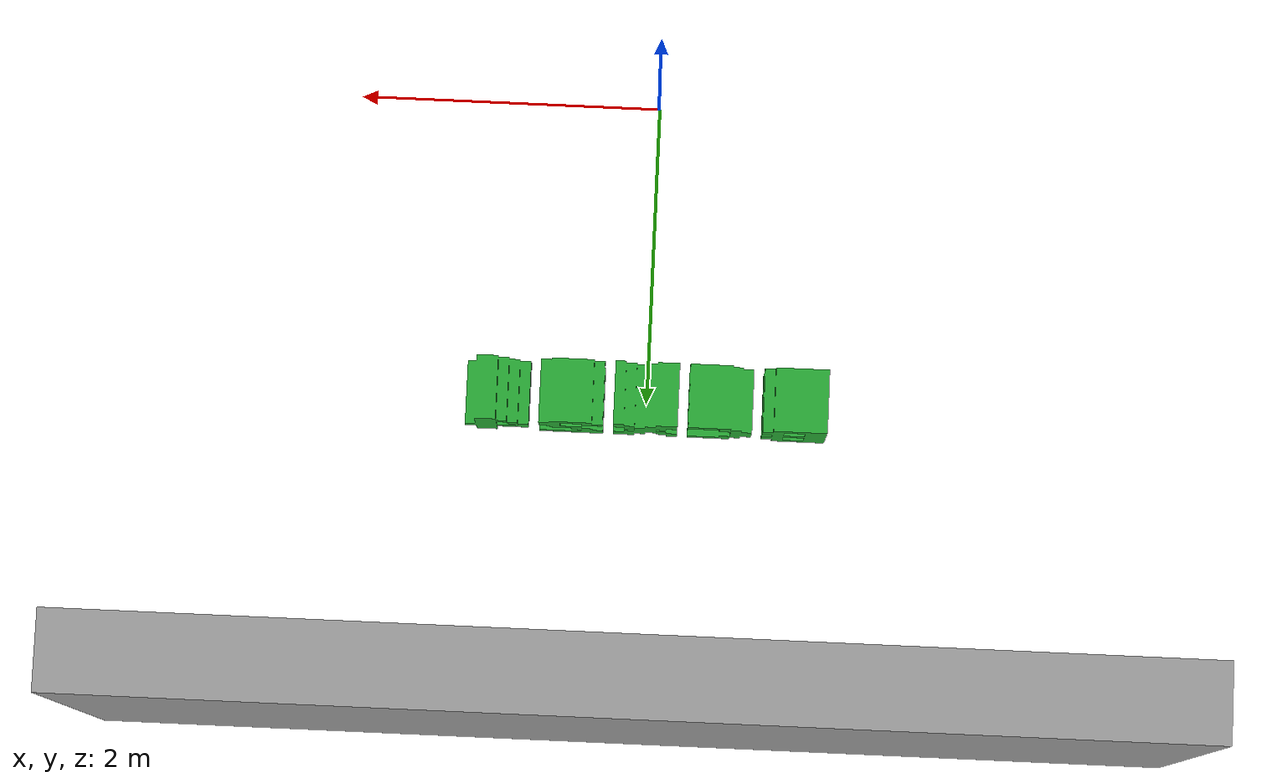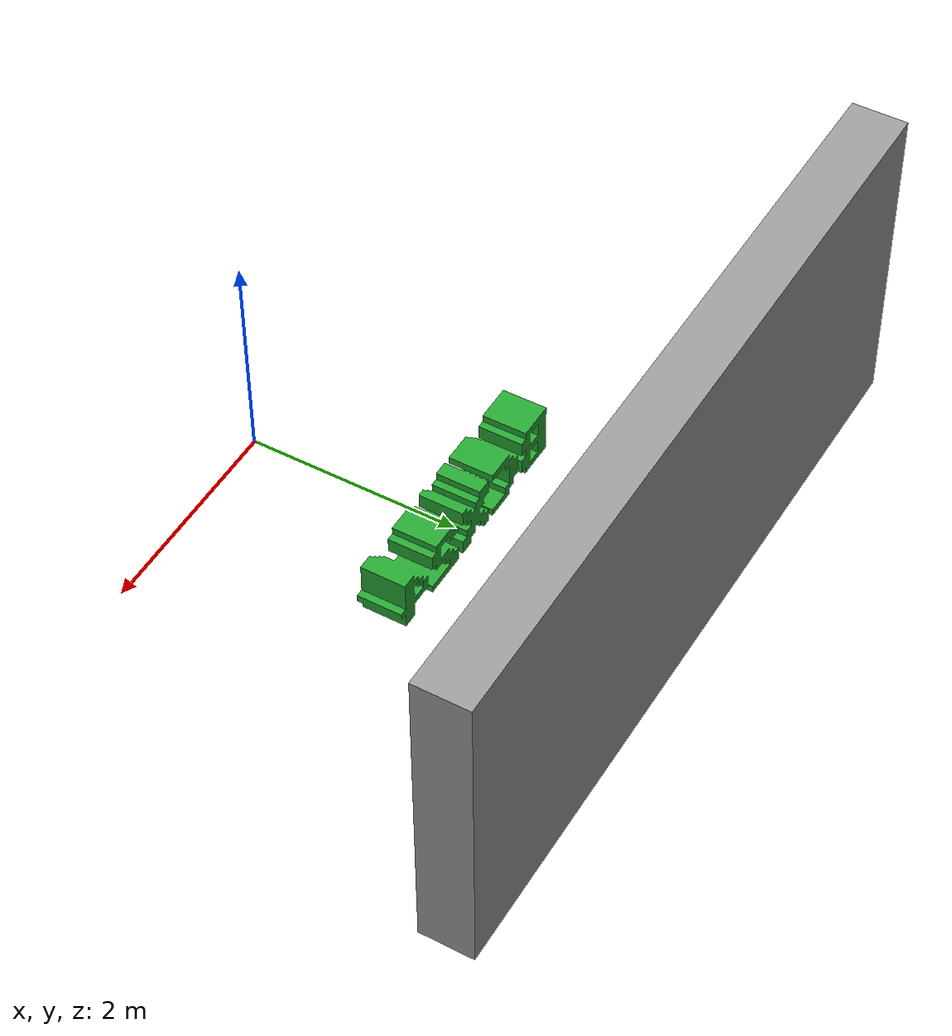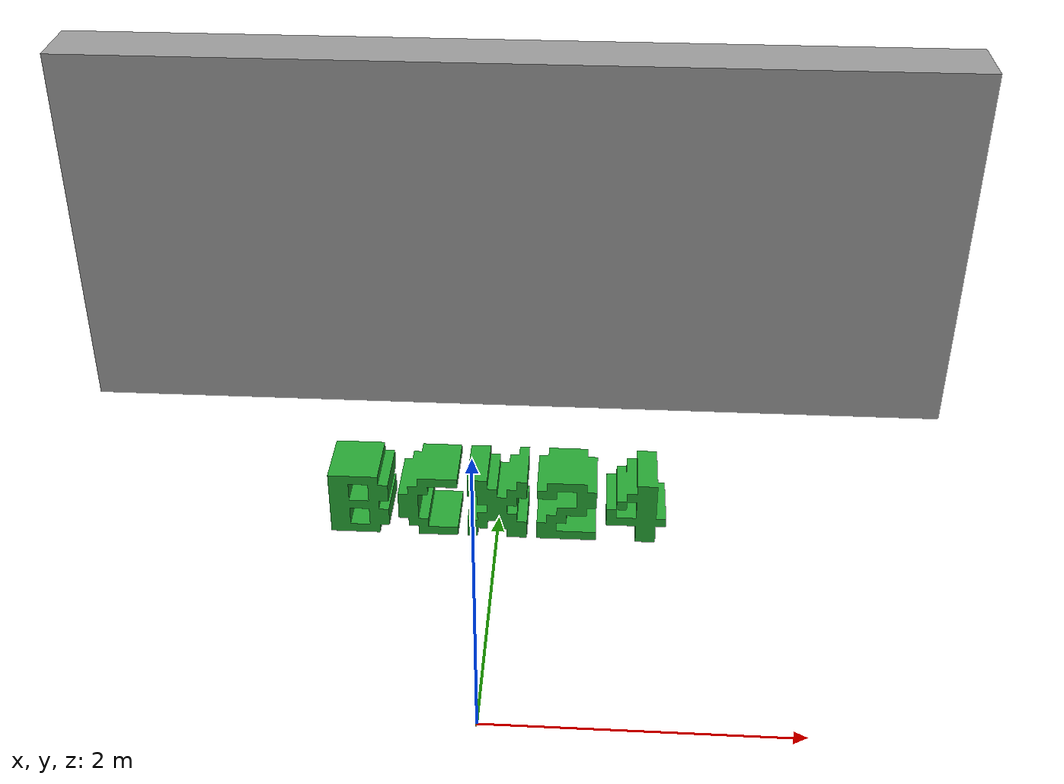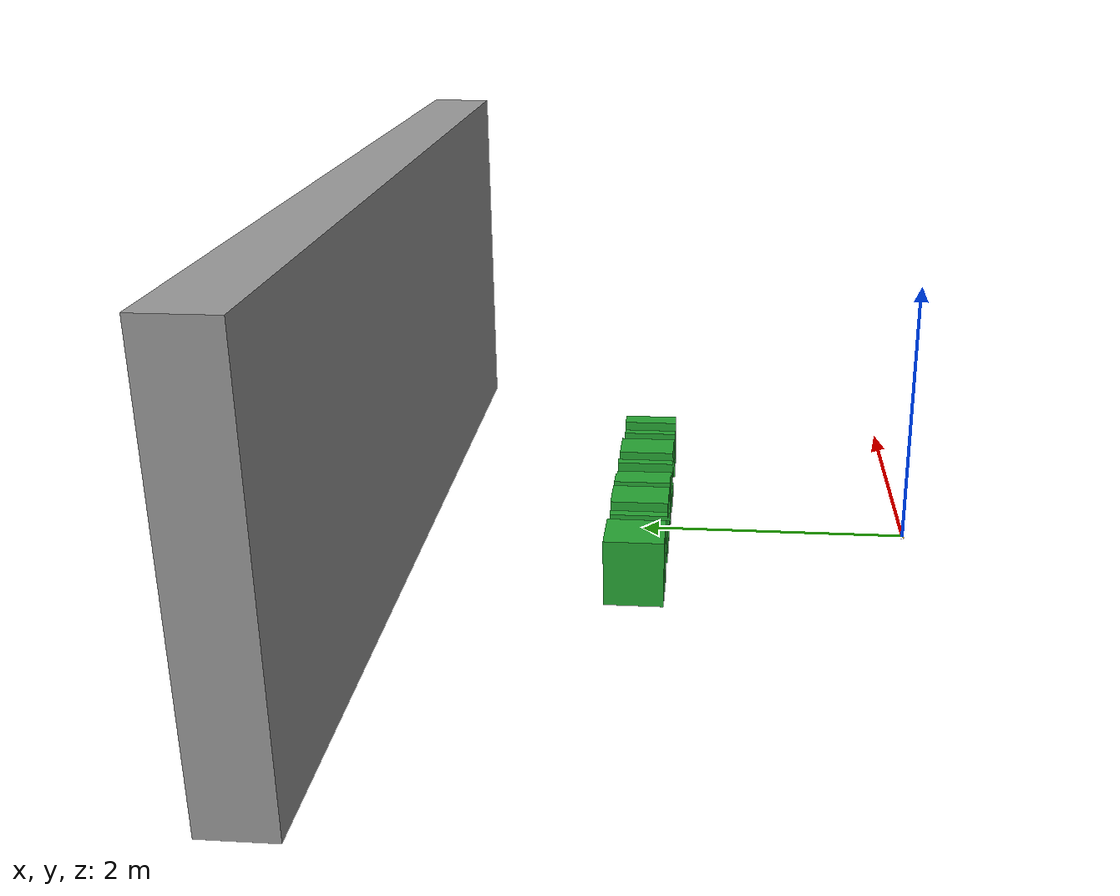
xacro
<?xml version="1.0"?>
<robot name="test" xmlns:xacro="http://www.ros.org/wiki/xacro">

  <!-- LINK: base_footprint -->
  <link name="base_footprint"></link>

  <!-- LINK: area -->
  <link name="area">
    <inertial>
      <mass value="10"/>
      <inertia ixx="1.0" ixy="0.0" ixz="0.0" iyy="1.0" iyz="0.0" izz="1.0"/>
    </inertial>

    <collision name='area_collision'>
      <origin xyz="0 0 0" rpy="0 0 0"/>
      <geometry>
        <box size="0.42 0.42 0.42"/>
      </geometry>
    </collision>

  </link>

  <!-- LINK: x_shaft -->
  <link name="x_shaft">
    <inertial>
      <mass value="0.1"/>
      <inertia ixx="1.0" ixy="0.0" ixz="0.0" iyy="1.0" iyz="0.0" izz="1.0"/>
    </inertial>

    <collision name='x_shaft_collision'>
      <origin xyz="0 0 0" rpy="0 0 0"/>
      <geometry>
        <box size="0.40 0.01 0.01"/>
      </geometry>
    </collision>

  </link>

  <!-- LINK: y_shaft -->
  <link name="y_shaft">
    <inertial>
      <mass value="0.1"/>
      <inertia ixx="1.0" ixy="0.0" ixz="0.0" iyy="1.0" iyz="0.0" izz="1.0"/>
    </inertial>

    <collision name='y_shaft_collision'>
      <origin xyz="0 0 0" rpy="0 0 0"/>
      <geometry>
        <box size="0.01 0.40 0.01"/>
      </geometry>
    </collision>

  </link>

  <!-- LINK: z_shaft -->
  <link name="z_shaft">
    <inertial>
      <mass value="0.1"/>
      <inertia ixx="1.0" ixy="0.0" ixz="0.0" iyy="1.0" iyz="0.0" izz="1.0"/>
    </inertial>

    <collision name='z_shaft_collision'>
      <origin xyz="0 0 0" rpy="0 0 0"/>
      <geometry>
        <box size="0.01 0.01 0.40"/>
      </geometry>
    </collision>

  </link>

  <!-- LINK: camera1 -->
  <link name="camera1">
    <inertial>
      <mass value="0.001"/>
      <inertia ixx="1.0" ixy="0.0" ixz="0.0" iyy="1.0" iyz="0.0" izz="1.0"/>
    </inertial>

    <collision name='camera1_collision'>
      <origin xyz="0 0 0" rpy="0 0 0"/>
      <geometry>
        <box size="0.02 0.02 0.02"/>
      </geometry>
    </collision>

    <visual name='camera1_visual'>
      <origin xyz="0 0 0" rpy="0 0 0"/>
      <geometry>
        <box size="0.02 0.02 0.02"/>
      </geometry>
    </visual>
  </link>

  <!-- LINK: bcx -->
  <link name="bcx">
    <inertial>
      <mass value="0.001"/>
      <inertia ixx="1.0" ixy="0.0" ixz="0.0" iyy="1.0" iyz="0.0" izz="1.0"/>
    </inertial>

    <collision name="bcx_collision">
      <origin xyz="0 0 0" rpy="0 0 0"/>
      <geometry>
        <mesh scale="0.07 0.07 0.07" filename="package://sim/meshes/bcx.stl"/>
      </geometry>
    </collision>

    <visual name="bcx_visual">
      <origin xyz="0 0 0" rpy="0 0 0"/>
      <geometry>
        <mesh scale="0.07 0.07 0.07" filename="package://sim/meshes/bcx.stl"/>
      </geometry>
    </visual>
  </link>

  <!-- LINK: background -->
  <link name="background">
    <inertial>
      <mass value="0.001"/>
      <inertia ixx="1.0" ixy="0.0" ixz="0.0" iyy="1.0" iyz="0.0" izz="1.0"/>
    </inertial>

    <collision name='background_collision'>
      <origin xyz="0 0 0" rpy="0 0 0"/>
      <geometry>
        <box size="7.0 0.5 3.0"/>
      </geometry>
    </collision>

    <visual name='background_visual'>
      <origin xyz="0 0 0" rpy="0 0 0"/>
      <geometry>
        <box size="7.0 0.5 3.0"/>
      </geometry>
    </visual>
  </link>

  <!-- COLOR: area -->

  <!-- COLOR: x_shaft -->

  <!-- COLOR: y_shaft -->

  <!-- COLOR: z_shaft -->

  <!-- COLOR: camera1 -->
  <gazebo reference="camera1">
    <material>Gazebo/Orange</material>
  </gazebo>

  <!-- COLOR: bcx -->
  <gazebo reference="bcx">
    <material>Gazebo/Green</material>
  </gazebo>

  <!-- COLOR: background -->
  <gazebo reference="background">
    <material>Gazebo/Grey</material>
  </gazebo>

  <!-- JOINT: base -->
  <joint name="base_joint" type="fixed">
    <origin xyz="0 0 0" rpy="0 0 0"/>
    <parent link="base_footprint"/>
    <child link="area"/>
  </joint>

  <!-- JOINT: area -->
  <joint name="area_joint" type="fixed">
    <origin xyz="0 0 0" rpy="0 0 0"/>
    <parent link="area"/>
    <child link="x_shaft"/>
  </joint>

  <!-- JOINT: x_joint -->
  <joint name="x_joint" type="prismatic">
    <axis xyz="1 0 0"/>
    <origin xyz="0 0 0" rpy="0 0 0"/>
    <parent link="x_shaft"/>
    <child link="y_shaft"/>
    <limit effort="1000.0" lower="-0.2" upper="0.2" velocity="30"/>
    <dynamics damping="0.0" friction="1.0"/>
  </joint>

  <!-- JOINT: y_joint -->
  <joint name="y_joint" type="prismatic">
    <axis xyz="0 1 0"/>
    <origin xyz="0 0 0" rpy="0 0 0"/>
    <parent link="y_shaft"/>
    <child link="z_shaft"/>
    <limit effort="1000.0" lower="-0.2" upper="0.2" velocity="30"/>
    <dynamics damping="0.0" friction="1.0"/>
  </joint>

  <!-- JOINT: z_joint -->
  <joint name="z_joint" type="prismatic">
    <axis xyz="0 0 1"/>
    <origin xyz="0 0 0" rpy="0 0 1.5707963"/>
    <parent link="z_shaft"/>
    <child link="camera1"/>
    <limit effort="1000.0" lower="-0.2" upper="0.2" velocity="30"/>
    <dynamics damping="0.0" friction="1.0"/>
  </joint>

  <!-- JOINT: bcx -->
  <joint name="bcx_joint" type="fixed">
    <origin xyz="0 2 0" rpy="0 0 0"/>
    <parent link="base_footprint"/>
    <child link="bcx"/>
  </joint>

  <!-- JOINT: background -->
  <joint name="background_joint" type="fixed">
    <origin xyz="0 4 1.3" rpy="0 0 0"/>
    <parent link="base_footprint"/>
    <child link="background"/>
  </joint>

  <!-- ROS2 CONTROL: GazeboSystem -->
  <ros2_control name="GazeboSystem" type="system">
    <hardware>
      <plugin>gazebo_ros2_control/GazeboSystem</plugin>
    </hardware>

    <joint name="x_joint">
      <command_interface name="position">
        <param name="min">-0.2</param>
        <param name="max">0.2</param>
      </command_interface>
      <state_interface name="position"/>
    </joint>

    <joint name="y_joint">
      <command_interface name="position">
        <param name="min">-0.2</param>
        <param name="max">0.2</param>
      </command_interface>
      <state_interface name="position"/>
    </joint>

    <joint name="z_joint">
      <command_interface name="position">
        <param name="min">-0.2</param>
        <param name="max">0.2</param>
      </command_interface>
      <state_interface name="position"/>
    </joint>
  </ros2_control>

  <!-- PLUGIN: camera_movement -->
  <gazebo>
    <plugin name="camera_movement" filename="libgazebo_ros2_control.so">
      <parameters>$(find sim)/config/camera_movement.yaml</parameters>
    </plugin>
  </gazebo>

  <!-- PLUGIN: camera1 -->
  <gazebo reference="camera1">
    <sensor type="camera" name="camera1">
      <visualize>false</visualize>
      <update_rate>30.0</update_rate>

      <camera name="camera1">
        <horizontal_fov>1.3962634</horizontal_fov>
        <image>
          <width>800</width>
          <height>800</height>
          <format>R8G8B8</format>
        </image>
        <clip>
          <near>0.02</near>
          <far>300</far>
        </clip>
        <distortion>
          <k1>0.0</k1>
          <k2>0.0</k2>
          <k3>0.0</k3>
          <p1>0.0</p1>
          <p2>0.0</p2>
          <center>0.5 0.5</center>
        </distortion>
      </camera>

      <plugin name="camera1_controller" filename="libgazebo_ros_camera.so">
        <always_on>true</always_on>

        <ros>
          <namespace>/car</namespace>
          <argument>camera/image_raw:=/car/camera/image</argument>
          <argument>camera/camera_info:=/car/camera/image/camera_info</argument>
        </ros>

        <camera_name>camera1</camera_name>
        <frame_name>base_footprint</frame_name>
        <hack_baseline>0.07</hack_baseline>
      </plugin>
    </sensor>
  </gazebo>
</robot>
